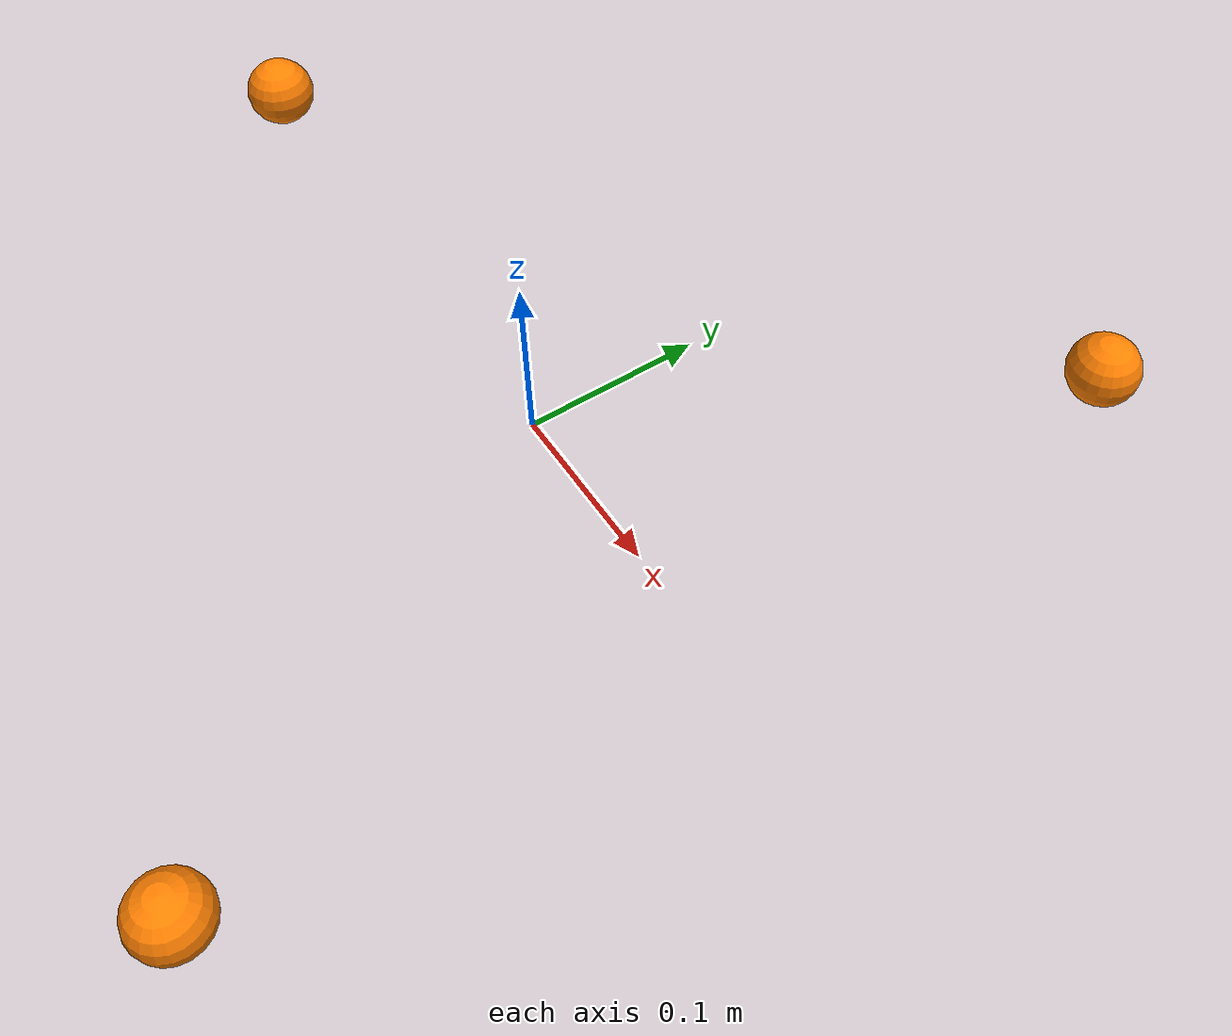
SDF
<?xml version="1.0"?>
<sdf version="1.6">
  <model name="ThreeLeggedStool">
    <static>false</static>
    <link name="SphereA">
      <inertial>
        <mass>2.000000e-002</mass>
        <inertia>
          <ixx>3.200000e-006</ixx>
          <ixy>0.000000e+000</ixy>
          <ixz>0.000000e+000</ixz>
          <iyy>3.200000e-006</iyy>
          <iyz>0.000000e+000</iyz>
          <izz>3.200000e-006</izz>
        </inertia>
        <pose frame="">0.000000e+000 0.000000e+000 0.000000e+000 0 0 0</pose>
      </inertial>
      <pose frame="">-3.000000e-001 0.000000e+000 1.999999999999e-002 0.000000e+000 -0.000000e+000 0.000000e+000</pose>
      <visual name="visual">
        <pose frame="">0 0 0 0 0 0</pose>
        <geometry>
          <sphere>
            <radius>2.000000e-002</radius>
          </sphere>
        </geometry>
        <material>
          <lighting>1</lighting>
          <ambient>1.000000 0.500000 0.000000 1</ambient>
          <diffuse>1.000000 0.500000 0.000000 1</diffuse>
          <specular>0.01 0.01 0.01 1</specular>
          <emissive>0 0 0 1</emissive>
        </material>
        <transparency>0.000000e+000</transparency>
        <cast_shadows>1</cast_shadows>
      </visual>
      <collision name="collision">
        <drake_compliance>
          <youngs_modulus>1e18</youngs_modulus>
          <dissipation>0</dissipation>
          <static_friction>.1</static_friction>
          <dynamic_friction>.1</dynamic_friction>
        </drake_compliance>
        <geometry>
          <sphere>
            <radius>2.000000e-002</radius>
          </sphere>
        </geometry>
        <surface>
          <friction>
            <ode>
              <mu>1</mu>
              <mu2>1</mu2>
            </ode>
          </friction>
          <contact>
            <ode>
              <min_depth>0.005</min_depth>
            </ode>
          </contact>
        </surface>
      </collision>
    </link>
    <link name="SphereC">
      <inertial>
        <mass>2.000000e-002</mass>
        <inertia>
          <ixx>3.200000e-006</ixx>
          <ixy>0.000000e+000</ixy>
          <ixz>0.000000e+000</ixz>
          <iyy>3.200000e-006</iyy>
          <iyz>0.000000e+000</iyz>
          <izz>3.200000e-006</izz>
        </inertia>
        <pose frame="">0.000000e+000 0.000000e+000 0.000000e+000 0 0 0</pose>
      </inertial>
      <pose frame="">1.500000e-001 -2.598100e-001 1.999999999999e-002 0.000000e+000 -0.000000e+000 0.000000e+000</pose>
      <visual name="visual">
        <pose frame="">0 0 0 0 0 0</pose>
        <geometry>
          <sphere>
            <radius>2.000000e-002</radius>
          </sphere>
        </geometry>
        <material>
          <lighting>1</lighting>
          <ambient>1.000000 0.500000 0.000000 1</ambient>
          <diffuse>1.000000 0.500000 0.000000 1</diffuse>
          <specular>0.01 0.01 0.01 1</specular>
          <emissive>0 0 0 1</emissive>
        </material>
        <transparency>0.000000e+000</transparency>
        <cast_shadows>1</cast_shadows>
      </visual>
      <collision name="collision">
        <drake_compliance>
          <youngs_modulus>1e18</youngs_modulus>
          <dissipation>0</dissipation>
          <static_friction>0</static_friction>
          <dynamic_friction>0</dynamic_friction>
        </drake_compliance>
        <geometry>
          <sphere>
            <radius>2.000000e-002</radius>
          </sphere>
        </geometry>
        <surface>
          <friction>
            <ode>
              <mu>1</mu>
              <mu2>1</mu2>
            </ode>
          </friction>
          <contact>
            <ode>
              <min_depth>0.005</min_depth>
            </ode>
          </contact>
        </surface>
      </collision>
    </link>
    <link name="SphereB">
      <inertial>
        <mass>2.000000e-002</mass>
        <inertia>
          <ixx>3.200000e-006</ixx>
          <ixy>0.000000e+000</ixy>
          <ixz>0.000000e+000</ixz>
          <iyy>3.200000e-006</iyy>
          <iyz>0.000000e+000</iyz>
          <izz>3.200000e-006</izz>
        </inertia>
        <pose frame="">0.000000e+000 0.000000e+000 0.000000e+000 0 0 0</pose>
      </inertial>
      <pose frame="">1.500000e-001 2.598076e-001 1.999999999999e-002 0.000000e+000 -0.000000e+000 0.000000e+000</pose>
      <visual name="visual">
        <pose frame="">0 0 0 0 0 0</pose>
        <geometry>
          <sphere>
            <radius>2.000000e-002</radius>
          </sphere>
        </geometry>
        <material>
          <lighting>1</lighting>
          <ambient>1.000000 0.500000 0.000000 1</ambient>
          <diffuse>1.000000 0.500000 0.000000 1</diffuse>
          <specular>0.01 0.01 0.01 1</specular>
          <emissive>0 0 0 1</emissive>
        </material>
        <transparency>0.000000e+000</transparency>
        <cast_shadows>1</cast_shadows>
      </visual>
      <collision name="collision">
        <drake_compliance>
          <youngs_modulus>1e18</youngs_modulus>
          <dissipation>0</dissipation>
          <static_friction>0</static_friction>
          <dynamic_friction>0</dynamic_friction>
        </drake_compliance>
        <geometry>
          <sphere>
            <radius>2.000000e-002</radius>
          </sphere>
        </geometry>
        <surface>
          <friction>
            <ode>
              <mu>1</mu>
              <mu2>1</mu2>
            </ode>
          </friction>
          <contact>
            <ode>
              <min_depth>0.005</min_depth>
            </ode>
          </contact>
        </surface>
      </collision>
    </link>
    <joint name="WeldLegAToSphereA" type="fixed">
      <parent>SphereB</parent>
      <child>SphereA</child>
      <pose frame="">0.000000e+000 0.000000e+000 0.000000e+000 0.000000e+000 -0.000000e+000 0.000000e+000</pose>
    </joint>
    <joint name="WeldLegBToSphereB" type="fixed">
      <parent>SphereC</parent>
      <child>SphereB</child>
      <pose frame="">0.000000e+000 0.000000e+000 0.000000e+000 0.000000e+000 -0.000000e+000 0.000000e+000</pose>
    </joint>
    <joint name="WeldLegCToSphereC" type="fixed">
      <parent>SphereC</parent>
      <child>SphereA</child>
      <pose frame="">0.000000e+000 0.000000e+000 0.000000e+000 0.000000e+000 -0.000000e+000 0.000000e+000</pose>
    </joint>
    <static>0</static>
    <allow_auto_disable>1</allow_auto_disable>
  </model>
</sdf>
